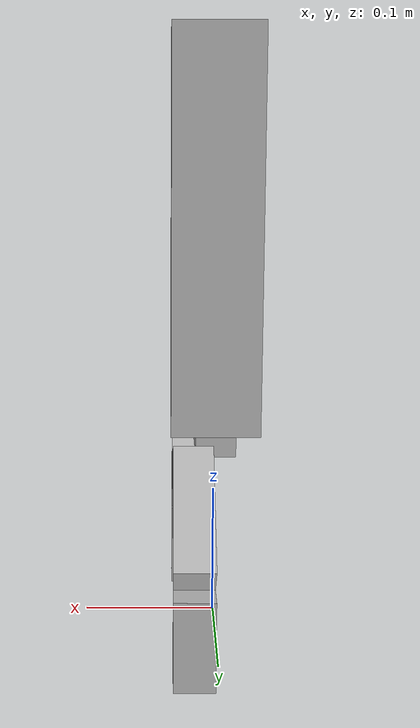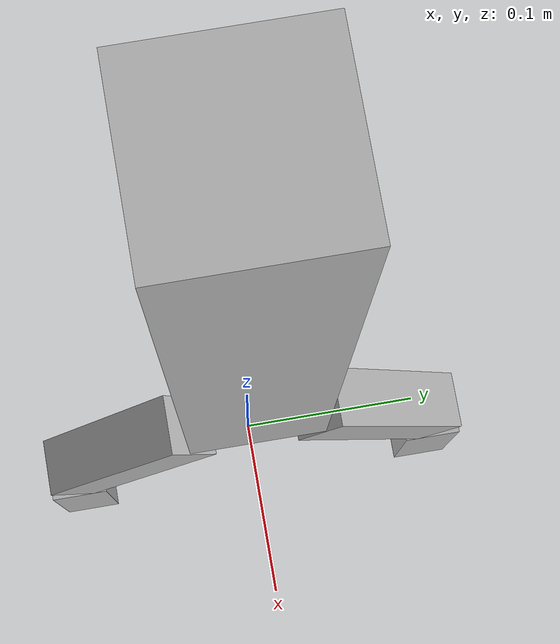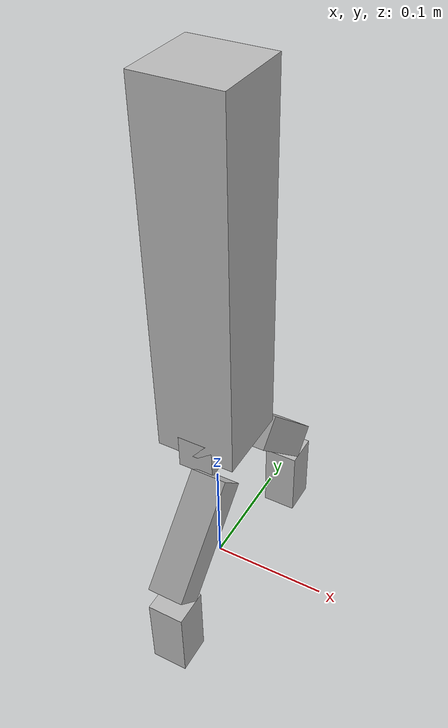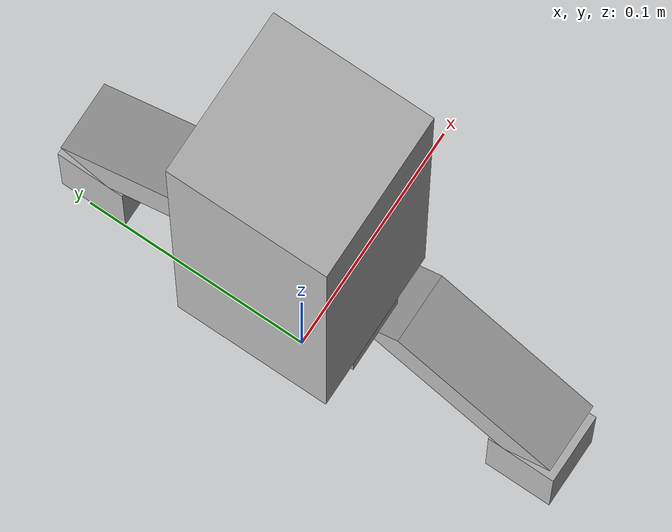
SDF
<?xml version="1.0"?>
<sdf version="1.4">
    <model name="simple_gripper2">
        <link name="riser">
            <pose>0.0 0.0 0.3 0 0 0</pose>
            <inertial>
                <pose>0 0 -0.17 0 0 0</pose>
                <inertia>
                    <ixx>0.01</ixx>
                    <ixy>0</ixy>
                    <ixz>0</ixz>
                    <iyy>0.01</iyy>
                    <iyz>0</iyz>
                    <izz>0.01</izz>
                </inertia>
                <mass>10.0</mass>
            </inertial>
            <collision name="collision">
                <geometry>
                    <box>
                        <size>0.067 0.067 0.3</size>
                    </box>
                </geometry>
            </collision>
            <visual name="visual">
                <geometry>
                    <box>
                        <size>0.067 0.067 0.3</size>
                    </box>
                </geometry>
                <material>
                    <script>Gazebo/Purple</script>
                </material>
            </visual>
        </link>
        <link name="palm">
            <pose>0.0 0.0 0.15 0 0 0</pose>
            <inertial>
                <inertia>
                    <ixx>0.01</ixx>
                    <ixy>0</ixy>
                    <ixz>0</ixz>
                    <iyy>0.01</iyy>
                    <iyz>0</iyz>
                    <izz>0.01</izz>
                </inertia>
                <mass>0.5</mass>
            </inertial>
            <collision name="collision">
                <geometry>
                    <box>
                        <size>0.03 0.067 0.03</size>
                    </box>
                </geometry>
            </collision>
            <visual name="visual">
                <geometry>
                    <box>
                        <size>0.03 0.067 0.03</size>
                    </box>
                </geometry>
                <material>
                    <script>Gazebo/Red</script>
                </material>
            </visual>
        </link>
        <link name="left_finger">
            <pose>0.017 0.067 0.1 -0.78539 0 0</pose>
            <inertial>
                <inertia>
                    <ixx>0.01</ixx>
                    <ixy>0</ixy>
                    <ixz>0</ixz>
                    <iyy>0.01</iyy>
                    <iyz>0</iyz>
                    <izz>0.01</izz>
                </inertia>
                <mass>0.1</mass>
            </inertial>
            <collision name="collision">
                <geometry>
                    <box>
                        <size>0.03 0.1 0.03</size>
                    </box>
                </geometry>
            </collision>
            <visual name="visual">
                <geometry>
                    <box>
                        <size>0.03 0.1 0.03</size>
                    </box>
                </geometry>
                <material>
                    <script>Gazebo/Blue</script>
                </material>
            </visual>
        </link>
        <link name="left_finger_tip">
            <pose>0.017 0.1 0.021 1.5707 0 0</pose>
            <inertial>
                <inertia>
                    <ixx>0.01</ixx>
                    <ixy>0</ixy>
                    <ixz>0</ixz>
                    <iyy>0.01</iyy>
                    <iyz>0</iyz>
                    <izz>0.01</izz>
                </inertia>
                <mass>0.1</mass>
            </inertial>
            <collision name="collision">
                <geometry>
                    <box>
                        <size>0.03 0.067 0.03</size>
                    </box>
                </geometry>
            </collision>
            <visual name="visual">
                <geometry>
                    <box>
                        <size>0.03 0.067 0.03</size>
                    </box>
                </geometry>
                <material>
                    <script>Gazebo/Blue</script>
                </material>
            </visual>
        </link>
        <link name="right_finger">
            <pose>0.017 -0.067 0.1 0.78539 0 0</pose>
            <inertial>
                <inertia>
                    <ixx>0.01</ixx>
                    <ixy>0</ixy>
                    <ixz>0</ixz>
                    <iyy>0.01</iyy>
                    <iyz>0</iyz>
                    <izz>0.01</izz>
                </inertia>
                <mass>0.1</mass>
            </inertial>
            <collision name="collision">
                <geometry>
                    <box>
                        <size>0.03 0.1 0.03</size>
                    </box>
                </geometry>
            </collision>
            <visual name="visual">
                <geometry>
                    <box>
                        <size>0.03 0.1 0.03</size>
                    </box>
                </geometry>
                <material>
                    <script>Gazebo/Green</script>
                </material>
            </visual>
        </link>
        <link name="right_finger_tip">
            <pose>0.017 -0.1 0.021 1.5707 0 0</pose>
            <inertial>
                <inertia>
                    <ixx>0.01</ixx>
                    <ixy>0</ixy>
                    <ixz>0</ixz>
                    <iyy>0.01</iyy>
                    <iyz>0</iyz>
                    <izz>0.01</izz>
                </inertia>
                <mass>0.1</mass>
            </inertial>
            <collision name="collision">
                <geometry>
                    <box>
                        <size>0.03 0.067 0.03</size>
                    </box>
                </geometry>
            </collision>
            <visual name="visual">
                <geometry>
                    <box>
                        <size>0.03 0.067 0.03</size>
                    </box>
                </geometry>
                <material>
                    <script>Gazebo/Green</script>
                </material>
            </visual>
        </link>
        <static>false</static>

        <joint name="palm_left_finger" type="revolute">
            <pose>0 -0.05 0 0 0 0</pose>
            <child>left_finger</child>
            <parent>palm</parent>
            <axis>
                <limit>
                    <lower>-0.4</lower>
                    <upper>0.4</upper>
                </limit>
                <xyz>1 0 0</xyz>
            </axis>
        </joint>
        <joint name="left_finger_tip_joint" type="revolute">
            <pose>0 0.03 0 0 0 0</pose>
            <child>left_finger_tip</child>
            <parent>left_finger</parent>
            <axis>
                <limit>
                    <lower>-0.4</lower>
                    <upper>0.4</upper>
                </limit>
                <xyz>1 0 0</xyz>
            </axis>
        </joint>
        <joint name="palm_right_finger" type="revolute">
            <pose>0 0.05 0 0 0 0</pose>
            <child>right_finger</child>
            <parent>palm</parent>
            <axis>
                <limit>
                    <lower>-0.4</lower>
                    <upper>0.4</upper>
                </limit>
                <xyz>1 0 0</xyz>
            </axis>
        </joint>
        <joint name="right_finger_tip_joint" type="revolute">
            <pose>0 0.03 0 0 0 0</pose>
            <child>right_finger_tip</child>
            <parent>right_finger</parent>
            <axis>
                <limit>
                    <lower>-0.4</lower>
                    <upper>0.4</upper>
                </limit>
                <xyz>1 0 0</xyz>
            </axis>
        </joint>
        <joint name="palm_riser" type="fixed">
            <child>palm</child>
            <parent>riser</parent>
        </joint>
    </model>
</sdf>
